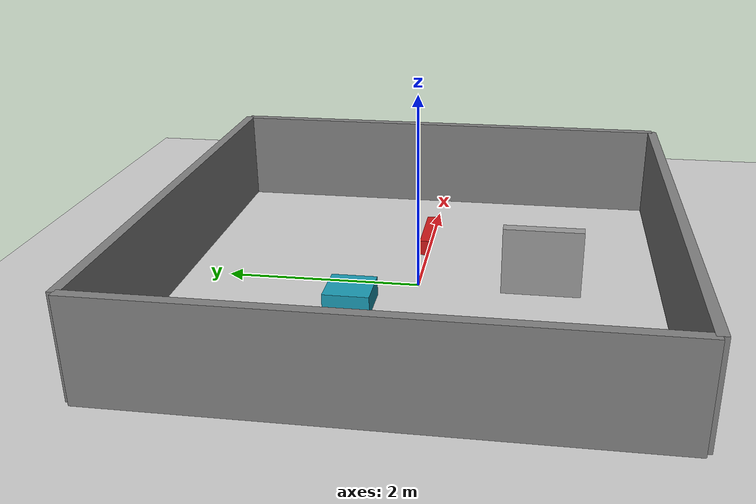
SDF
<sdf version='1.10'>
  <world name='arm_assist_test'>
    <physics type='ode'>
      <real_time_update_rate>1000</real_time_update_rate>
      <max_step_size>0.001</max_step_size>
      <real_time_factor>1</real_time_factor>
    </physics>
    <gravity>0 0 -9.81</gravity>
    <scene>
      <ambient>0.4 0.4 0.4 1</ambient>
      <background>0.7 0.7 0.7 1</background>
      <shadows>true</shadows>
    </scene>
    <plugin name='gz::sim::systems::Physics' filename='gz-sim-physics-system'/>
    <plugin name='gz::sim::systems::UserCommands' filename='gz-sim-user-commands-system'/>
    <plugin name='gz::sim::systems::SceneBroadcaster' filename='gz-sim-scene-broadcaster-system'/>
    <plugin name='gz::sim::systems::Sensors' filename='gz-sim-sensors-system'>
      <render_engine>ogre2</render_engine>
    </plugin>
    <plugin name='gz::sim::systems::Imu' filename='gz-sim-imu-system'/>

    <model name='ground_plane'>
      <static>true</static>
      <link name='link'>
        <collision name='collision'>
          <geometry>
            <plane>
              <normal>0 0 1</normal>
              <size>100 100</size>
            </plane>
          </geometry>
        </collision>
        <visual name='visual'>
          <geometry>
            <plane>
              <normal>0 0 1</normal>
              <size>100 100</size>
            </plane>
          </geometry>
          <material>
            <ambient>0.8 0.8 0.8 1</ambient>
            <diffuse>0.8 0.8 0.8 1</diffuse>
            <specular>0.8 0.8 0.8 1</specular>
          </material>
        </visual>
      </link>
    </model>

    <model name='wall_north'>
      <static>true</static>
      <pose>0 2.5 0.5 0 0 0</pose>
      <link name='link'>
        <collision name='collision'>
          <geometry><box><size>5 0.1 1</size></box></geometry>
        </collision>
        <visual name='visual'>
          <geometry><box><size>5 0.1 1</size></box></geometry>
          <material>
            <ambient>0.5 0.5 0.5 1</ambient>
            <diffuse>0.5 0.5 0.5 1</diffuse>
          </material>
        </visual>
      </link>
    </model>
    <model name='wall_south'>
      <static>true</static>
      <pose>0 -2.5 0.5 0 0 0</pose>
      <link name='link'>
        <collision name='collision'>
          <geometry><box><size>5 0.1 1</size></box></geometry>
        </collision>
        <visual name='visual'>
          <geometry><box><size>5 0.1 1</size></box></geometry>
          <material>
            <ambient>0.5 0.5 0.5 1</ambient>
            <diffuse>0.5 0.5 0.5 1</diffuse>
          </material>
        </visual>
      </link>
    </model>
    <model name='wall_east'>
      <static>true</static>
      <pose>2.5 0 0.5 0 0 0</pose>
      <link name='link'>
        <collision name='collision'>
          <geometry><box><size>0.1 5 1</size></box></geometry>
        </collision>
        <visual name='visual'>
          <geometry><box><size>0.1 5 1</size></box></geometry>
          <material>
            <ambient>0.5 0.5 0.5 1</ambient>
            <diffuse>0.5 0.5 0.5 1</diffuse>
          </material>
        </visual>
      </link>
    </model>
    <model name='wall_west'>
      <static>true</static>
      <pose>-2.5 0 0.5 0 0 0</pose>
      <link name='link'>
        <collision name='collision'>
          <geometry><box><size>0.1 5 1</size></box></geometry>
        </collision>
        <visual name='visual'>
          <geometry><box><size>0.1 5 1</size></box></geometry>
          <material>
            <ambient>0.5 0.5 0.5 1</ambient>
            <diffuse>0.5 0.5 0.5 1</diffuse>
          </material>
        </visual>
      </link>
    </model>

    <model name='low_under_object_bar'>
      <static>true</static>
      <pose>0.85 0.0 0.20 0 0 0</pose>
      <link name='link'>
        <collision name='collision'>
          <geometry><box><size>0.70 0.10 0.16</size></box></geometry>
        </collision>
        <visual name='visual'>
          <geometry><box><size>0.70 0.10 0.16</size></box></geometry>
          <material>
            <ambient>0.8 0.1 0.1 1</ambient>
            <diffuse>0.8 0.1 0.1 1</diffuse>
          </material>
        </visual>
      </link>
    </model>

    <model name='low_side_object'>
      <static>true</static>
      <pose>-0.75 0.55 0.23 0 0 0</pose>
      <link name='link'>
        <collision name='collision'>
          <geometry><box><size>0.45 0.45 0.20</size></box></geometry>
        </collision>
        <visual name='visual'>
          <geometry><box><size>0.45 0.45 0.20</size></box></geometry>
          <material>
            <ambient>0.1 0.6 0.7 1</ambient>
            <diffuse>0.1 0.6 0.7 1</diffuse>
          </material>
        </visual>
      </link>
    </model>

    <model name='solid_wall_test_block'>
      <static>true</static>
      <pose>0.0 -1.25 0.35 0 0 0</pose>
      <link name='link'>
        <collision name='collision'>
          <geometry><box><size>0.12 0.80 0.70</size></box></geometry>
        </collision>
        <visual name='visual'>
          <geometry><box><size>0.12 0.80 0.70</size></box></geometry>
          <material>
            <ambient>0.6 0.6 0.6 1</ambient>
            <diffuse>0.6 0.6 0.6 1</diffuse>
          </material>
        </visual>
      </link>
    </model>

    <light name='sun' type='directional'>
      <pose>0 0 10 0 0 0</pose>
      <cast_shadows>true</cast_shadows>
      <intensity>1</intensity>
      <direction>-0.5 0.1 -0.9</direction>
      <diffuse>0.8 0.8 0.8 1</diffuse>
      <specular>0.2 0.2 0.2 1</specular>
    </light>
  </world>
</sdf>
